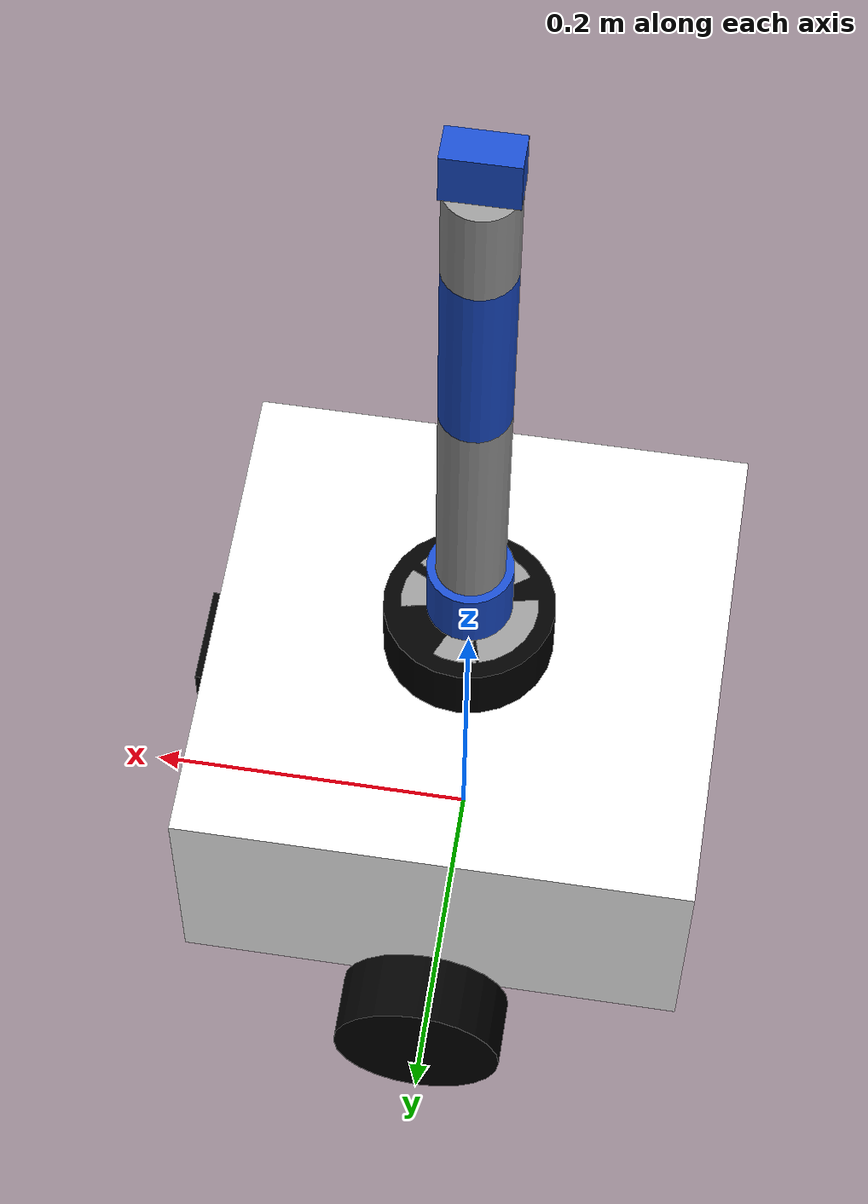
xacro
<?xml version="1.0"?>
<robot xmlns:xacro="http://www.ros.org/wiki/xacro" name="bot">
  <xacro:include filename="inertial_macros.xacro"/>
  <xacro:include filename="robot_core.xacro"/>
  <xacro:include filename="gazebo_control.xacro"/>
  <xacro:include filename="lidar.xacro"/>
  <xacro:include filename="camera.xacro"/>
  <xacro:include filename="arm.xacro"/>
  <xacro:include filename="ros2_control.xacro"/>
</robot>

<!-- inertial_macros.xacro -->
<robot xmlns:xacro="http://www.ros.org/wiki/xacro">

  <xacro:macro name="inertial_box" params="mass x y z *origin">
    <inertial>
      <xacro:insert_block name="origin"/>
      <mass value="${mass}"/>
      <inertia ixx="${(1/12)*mass*(y*y+z*z)}" ixy="0" ixz="0"
               iyy="${(1/12)*mass*(x*x+z*z)}" iyz="0"
               izz="${(1/12)*mass*(x*x+y*y)}"/>
    </inertial>
  </xacro:macro>

  <xacro:macro name="inertial_cylinder" params="mass length radius *origin">
    <inertial>
      <xacro:insert_block name="origin"/>
      <mass value="${mass}"/>
      <inertia ixx="${(1/12)*mass*(3*radius*radius+length*length)}" ixy="0" ixz="0"
               iyy="${(1/12)*mass*(3*radius*radius+length*length)}" iyz="0"
               izz="${(1/2)*mass*(radius*radius)}"/>
    </inertial>
  </xacro:macro>

  <xacro:macro name="inertial_sphere" params="mass radius *origin">
    <inertial>
      <xacro:insert_block name="origin"/>
      <mass value="${mass}"/>
      <inertia ixx="${(2/5)*mass*(radius*radius)}" ixy="0" ixz="0"
               iyy="${(2/5)*mass*(radius*radius)}" iyz="0"
               izz="${(2/5)*mass*(radius*radius)}"/>
    </inertial>
  </xacro:macro>

</robot>

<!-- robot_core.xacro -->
<robot xmlns:xacro="http://www.ros.org/wiki/xacro">

  <!-- ===== Dimensions ===== -->
  <xacro:property name="wheel_radius"   value="0.05"/>
  <xacro:property name="wheel_width"    value="0.04"/>
  <xacro:property name="wheel_offset_y" value="0.18"/>
  <xacro:property name="caster_radius"  value="0.025"/>
  <xacro:property name="chassis_x"      value="0.30"/>
  <xacro:property name="chassis_y"      value="0.30"/>
  <xacro:property name="chassis_z"      value="0.15"/>

  <material name="white"><color rgba="1 1 1 1"/></material>
  <material name="black"><color rgba="0 0 0 1"/></material>

  <!-- ===== Frames ===== -->
  <link name="base_footprint"/>
  <link name="base_link"/>
  <joint name="base_joint" type="fixed">
    <parent link="base_footprint"/>
    <child link="base_link"/>
    <origin xyz="0 0 ${wheel_radius}"/>
  </joint>

  <!-- ===== Chassis ===== -->
  <joint name="chassis_joint" type="fixed">
    <parent link="base_link"/>
    <child link="chassis"/>
    <origin xyz="0 0 ${chassis_z/2}"/>
  </joint>
  <link name="chassis">
    <visual>
      <geometry><box size="${chassis_x} ${chassis_y} ${chassis_z}"/></geometry>
      <material name="white"/>
    </visual>
    <collision>
      <geometry><box size="${chassis_x} ${chassis_y} ${chassis_z}"/></geometry>
    </collision>
    <xacro:inertial_box mass="0.5" x="${chassis_x}" y="${chassis_y}" z="${chassis_z}">
      <origin xyz="0 0 0"/>
    </xacro:inertial_box>
  </link>

  <!-- ===== Drive wheels ===== -->
  <joint name="left_wheel_joint" type="continuous">
    <parent link="base_link"/>
    <child link="left_wheel"/>
    <origin xyz="0 ${wheel_offset_y} 0" rpy="-${pi/2} 0 0"/>
    <axis xyz="0 0 1"/>
  </joint>
  <link name="left_wheel">
    <visual>
      <geometry><cylinder radius="${wheel_radius}" length="${wheel_width}"/></geometry>
      <material name="black"/>
    </visual>
    <collision>
      <geometry><cylinder radius="${wheel_radius}" length="${wheel_width}"/></geometry>
    </collision>
    <xacro:inertial_cylinder mass="0.1" length="${wheel_width}" radius="${wheel_radius}">
      <origin xyz="0 0 0"/>
    </xacro:inertial_cylinder>
  </link>

  <joint name="right_wheel_joint" type="continuous">
    <parent link="base_link"/>
    <child link="right_wheel"/>
    <origin xyz="0 -${wheel_offset_y} 0" rpy="${pi/2} 0 0"/>
    <axis xyz="0 0 -1"/>
  </joint>
  <link name="right_wheel">
    <visual>
      <geometry><cylinder radius="${wheel_radius}" length="${wheel_width}"/></geometry>
      <material name="black"/>
    </visual>
    <collision>
      <geometry><cylinder radius="${wheel_radius}" length="${wheel_width}"/></geometry>
    </collision>
    <xacro:inertial_cylinder mass="0.1" length="${wheel_width}" radius="${wheel_radius}">
      <origin xyz="0 0 0"/>
    </xacro:inertial_cylinder>
  </link>

  <!-- ===== Casters (front + rear) ===== -->
  <joint name="caster_joint" type="fixed">
    <parent link="base_link"/>
    <child link="caster_wheel"/>
    <origin xyz="0.12 0 ${caster_radius - wheel_radius}"/>
  </joint>
  <link name="caster_wheel">
    <visual>
      <geometry><sphere radius="${caster_radius}"/></geometry>
      <material name="black"/>
    </visual>
    <collision>
      <geometry><sphere radius="${caster_radius}"/></geometry>
    </collision>
    <xacro:inertial_sphere mass="0.05" radius="${caster_radius}">
      <origin xyz="0 0 0"/>
    </xacro:inertial_sphere>
  </link>

  <joint name="caster_back_joint" type="fixed">
    <parent link="base_link"/>
    <child link="caster_back_wheel"/>
    <origin xyz="-0.12 0 ${caster_radius - wheel_radius}"/>
  </joint>
  <link name="caster_back_wheel">
    <visual>
      <geometry><sphere radius="${caster_radius}"/></geometry>
      <material name="black"/>
    </visual>
    <collision>
      <geometry><sphere radius="${caster_radius}"/></geometry>
    </collision>
    <xacro:inertial_sphere mass="0.05" radius="${caster_radius}">
      <origin xyz="0 0 0"/>
    </xacro:inertial_sphere>
  </link>

</robot>

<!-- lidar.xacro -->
<robot xmlns:xacro="http://www.ros.org/wiki/xacro">

  <link name="lidar_link">
    <visual>
        <geometry>
            <cylinder radius="0.05" length="0.04"/>
        </geometry>
        <material name="black" />
    </visual>
    <collision>
        <geometry>
            <cylinder radius="0.05" length="0.04"/>
        </geometry>
    </collision>
    <xacro:inertial_cylinder mass="0.1" length="0.04" radius="0.05" >
        <origin xyz="0.0 0.0 0.0" rpy="0.0 0.0 0.0"/>

    </xacro:inertial_cylinder>

  </link>

  <joint name="lidar_joint" type="fixed">
    <parent link="chassis"/>
    <child link="lidar_link"/>
    <origin xyz="0.0 0.0 0.095" rpy="0.0 0.0 0.0"/>

  </joint>

  <gazebo reference="lidar_link">
    <sensor name="lidar" type="gpu_lidar" update_rate="10">
      <topic>scan</topic>
      <gz_frame_id>lidar_link</gz_frame_id>
      <lidar>
        <scan>
          <horizontal>
            <samples>360</samples>
            <resolution>1</resolution>
            <min_angle>-3.14159</min_angle>
            <max_angle>3.14159</max_angle>
          </horizontal>
          <vertical>
            <samples>1</samples>
            <min_angle>0</min_angle>
            <max_angle>0</max_angle>
          </vertical>
        </scan>
        <range>
          <min>0.12</min>
          <max>12.0</max>
          <resolution>0.015</resolution>
        </range>
        <noise>
          <type>gaussian</type>
          <mean>0.0</mean>
          <stddev>0.01</stddev>
        </noise>
      </lidar>
      <always_on>true</always_on>
      <visualize>true</visualize>
    </sensor>
  </gazebo>

</robot>

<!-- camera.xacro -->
<robot xmlns:xacro="http://www.ros.org/wiki/xacro">

  <!-- ===== Camera link (mounted on chassis front, facing +x) ===== -->
  <joint name="camera_joint" type="fixed">
    <parent link="chassis"/>
    <child link="camera_link"/>
    <!-- chassis is 0.30 long → front face at x=0.15; mount slightly above center -->
    <origin xyz="0.15 0.0 0.03" rpy="0.0 0.0 0.0"/>
  </joint>

  <link name="camera_link">
    <visual>
      <geometry>
        <box size="0.02 0.06 0.02"/>
      </geometry>
      <material name="black"/>
    </visual>
    <collision>
      <geometry>
        <box size="0.02 0.06 0.02"/>
      </geometry>
    </collision>
    <xacro:inertial_box mass="0.05" x="0.02" y="0.06" z="0.02">
      <origin xyz="0 0 0"/>
    </xacro:inertial_box>
  </link>

  <!-- ===== Optical frame =====
       ROS image pipelines expect z-forward, x-right, y-down.
       The link frame above is x-forward, so rotate (-90, 0, -90). -->
  <joint name="camera_optical_joint" type="fixed">
    <parent link="camera_link"/>
    <child link="camera_link_optical"/>
    <origin xyz="0 0 0" rpy="${-pi/2} 0 ${-pi/2}"/>
  </joint>
  <link name="camera_link_optical"/>

  <gazebo reference="camera_link">
    <sensor name="camera" type="rgbd_camera" update_rate="10">
      <topic>camera</topic>
      <gz_frame_id>camera_link_optical</gz_frame_id>
      <camera>
        <horizontal_fov>1.047</horizontal_fov>
        <image>
          <width>320</width>
          <height>240</height>
          <format>R8G8B8</format>
        </image>
        <clip>
          <near>0.05</near>
          <far>10.0</far>
        </clip>
      </camera>
      <always_on>true</always_on>
      <visualize>false</visualize>
    </sensor>
  </gazebo>

</robot>

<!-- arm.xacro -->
<robot xmlns:xacro="http://www.ros.org/wiki/xacro">

  <material name="arm_grey"><color rgba="0.6 0.6 0.6 1"/></material>
  <material name="arm_blue"><color rgba="0.1 0.3 0.8 1"/></material>

  <!-- dimensions -->
  <xacro:property name="base_h"   value="0.04"/>
  <xacro:property name="base_r"   value="0.04"/>
  <xacro:property name="link_r"   value="0.02"/>
  <xacro:property name="upper_l"  value="0.15"/>
  <xacro:property name="fore_l"   value="0.12"/>
  <xacro:property name="wrist_l"  value="0.06"/>

  <!-- ===== Arm base - fixed to top of chassis ===== -->
  <joint name="arm_base_joint" type="fixed">
    <parent link="chassis"/>
    <!-- chassis_z/2 = 0.075 → top face of chassis -->
    <child link="arm_base_link"/>
    <origin xyz="0 0 0.075" rpy="0 0 0"/>
  </joint>
  <link name="arm_base_link">
    <visual>
      <origin xyz="0 0 ${base_h/2}"/>
      <geometry><cylinder radius="${base_r}" length="${base_h}"/></geometry>
      <material name="arm_grey"/>
    </visual>
    <collision>
      <origin xyz="0 0 ${base_h/2}"/>
      <geometry><cylinder radius="${base_r}" length="${base_h}"/></geometry>
    </collision>
    <xacro:inertial_cylinder mass="0.2" length="${base_h}" radius="${base_r}">
      <origin xyz="0 0 ${base_h/2}"/>
    </xacro:inertial_cylinder>
  </link>

  <!-- ===== Joint 1 - shoulder pan (rotates about Z) ===== -->
  <joint name="shoulder_pan_joint" type="revolute">
    <parent link="arm_base_link"/>
    <child link="shoulder_link"/>
    <origin xyz="0 0 ${base_h}" rpy="0 0 0"/>
    <axis xyz="0 0 1"/>
    <limit lower="-3.14" upper="3.14" effort="20" velocity="2.0"/>
  </joint>
  <link name="shoulder_link">
    <visual>
      <origin xyz="0 0 0.02"/>
      <geometry><cylinder radius="${link_r+0.005}" length="0.04"/></geometry>
      <material name="arm_blue"/>
    </visual>
    <collision>
      <origin xyz="0 0 0.02"/>
      <geometry><cylinder radius="${link_r+0.005}" length="0.04"/></geometry>
    </collision>
    <xacro:inertial_cylinder mass="0.1" length="0.04" radius="${link_r+0.005}">
      <origin xyz="0 0 0.02"/>
    </xacro:inertial_cylinder>
  </link>

  <!-- ===== Joint 2 - shoulder lift (rotates about Y) ===== -->
  <joint name="shoulder_lift_joint" type="revolute">
    <parent link="shoulder_link"/>
    <child link="upper_arm_link"/>
    <origin xyz="0 0 0.04" rpy="0 0 0"/>
    <axis xyz="0 1 0"/>
    <limit lower="-1.57" upper="1.57" effort="20" velocity="2.0"/>
  </joint>
  <link name="upper_arm_link">
    <visual>
      <origin xyz="0 0 ${upper_l/2}"/>
      <geometry><cylinder radius="${link_r}" length="${upper_l}"/></geometry>
      <material name="arm_grey"/>
    </visual>
    <collision>
      <origin xyz="0 0 ${upper_l/2}"/>
      <geometry><cylinder radius="${link_r}" length="${upper_l}"/></geometry>
    </collision>
    <xacro:inertial_cylinder mass="0.15" length="${upper_l}" radius="${link_r}">
      <origin xyz="0 0 ${upper_l/2}"/>
    </xacro:inertial_cylinder>
  </link>

  <!-- ===== Joint 3 - elbow (rotates about Y) ===== -->
  <joint name="elbow_joint" type="revolute">
    <parent link="upper_arm_link"/>
    <child link="forearm_link"/>
    <origin xyz="0 0 ${upper_l}" rpy="0 0 0"/>
    <axis xyz="0 1 0"/>
    <limit lower="-2.5" upper="2.5" effort="15" velocity="2.0"/>
  </joint>
  <link name="forearm_link">
    <visual>
      <origin xyz="0 0 ${fore_l/2}"/>
      <geometry><cylinder radius="${link_r}" length="${fore_l}"/></geometry>
      <material name="arm_blue"/>
    </visual>
    <collision>
      <origin xyz="0 0 ${fore_l/2}"/>
      <geometry><cylinder radius="${link_r}" length="${fore_l}"/></geometry>
    </collision>
    <xacro:inertial_cylinder mass="0.1" length="${fore_l}" radius="${link_r}">
      <origin xyz="0 0 ${fore_l/2}"/>
    </xacro:inertial_cylinder>
  </link>

  <!-- ===== Joint 4 - wrist pitch (rotates about Y) ===== -->
  <joint name="wrist_pitch_joint" type="revolute">
    <parent link="forearm_link"/>
    <child link="wrist_link"/>
    <origin xyz="0 0 ${fore_l}" rpy="0 0 0"/>
    <axis xyz="0 1 0"/>
    <limit lower="-1.8" upper="1.8" effort="10" velocity="2.0"/>
  </joint>
  <link name="wrist_link">
    <visual>
      <origin xyz="0 0 ${wrist_l/2}"/>
      <geometry><cylinder radius="${link_r}" length="${wrist_l}"/></geometry>
      <material name="arm_grey"/>
    </visual>
    <collision>
      <origin xyz="0 0 ${wrist_l/2}"/>
      <geometry><cylinder radius="${link_r}" length="${wrist_l}"/></geometry>
    </collision>
    <xacro:inertial_cylinder mass="0.08" length="${wrist_l}" radius="${link_r}">
      <origin xyz="0 0 ${wrist_l/2}"/>
    </xacro:inertial_cylinder>
  </link>

  <!-- ===== Joint 5 - wrist roll (rotates about Z) ===== -->
  <joint name="wrist_roll_joint" type="revolute">
    <parent link="wrist_link"/>
    <child link="tool_link"/>
    <origin xyz="0 0 ${wrist_l}" rpy="0 0 0"/>
    <axis xyz="0 0 1"/>
    <limit lower="-3.14" upper="3.14" effort="10" velocity="2.0"/>
  </joint>
  <link name="tool_link">
    <visual>
      <origin xyz="0 0 0.015"/>
      <geometry><box size="0.04 0.02 0.03"/></geometry>
      <material name="arm_blue"/>
    </visual>
    <collision>
      <origin xyz="0 0 0.015"/>
      <geometry><box size="0.04 0.02 0.03"/></geometry>
    </collision>
    <xacro:inertial_box mass="0.05" x="0.04" y="0.02" z="0.03">
      <origin xyz="0 0 0.015"/>
    </xacro:inertial_box>
  </link>

  <!-- Tool Center Point frame (planning target) -->
  <joint name="tcp_joint" type="fixed">
    <parent link="tool_link"/>
    <child link="tcp_link"/>
    <origin xyz="0 0 0.03" rpy="0 0 0"/>
  </joint>
  <link name="tcp_link"/>

</robot>

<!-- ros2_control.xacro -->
<robot xmlns:xacro="http://www.ros.org/wiki/xacro">

  <xacro:arg name="sim_mode" default="gazebo"/>
  <xacro:property name="sim_mode" value="$(arg sim_mode)"/>

  <xacro:macro name="arm_joint_iface" params="name">
    <joint name="${name}">
      <command_interface name="position"/>
      <state_interface name="position"/>
      <state_interface name="velocity"/>
    </joint>
  </xacro:macro>

  <ros2_control name="RobotSystem" type="system">
    <hardware>
      <xacro:if value="${sim_mode == 'mock'}">
        <plugin>mock_components/GenericSystem</plugin>
      </xacro:if>
      <xacro:unless value="${sim_mode == 'mock'}">
        <plugin>gz_ros2_control/GazeboSimSystem</plugin>
      </xacro:unless>
    </hardware>
    <xacro:arm_joint_iface name="shoulder_pan_joint"/>
    <xacro:arm_joint_iface name="shoulder_lift_joint"/>
    <xacro:arm_joint_iface name="elbow_joint"/>
    <xacro:arm_joint_iface name="wrist_pitch_joint"/>
    <xacro:arm_joint_iface name="wrist_roll_joint"/>
  </ros2_control>

  <!-- gz_ros2_control plugin (Gazebo only) - starts a controller_manager
       inside Gazebo and loads the controllers from this YAML. -->
  <xacro:unless value="${sim_mode == 'mock'}">
    <gazebo>
      <plugin filename="gz_ros2_control-system"
              name="gz_ros2_control::GazeboSimROS2ControlPlugin">
        <parameters>$(find bot_description)/config/arm_controllers.yaml</parameters>
      </plugin>
    </gazebo>
  </xacro:unless>

</robot>
